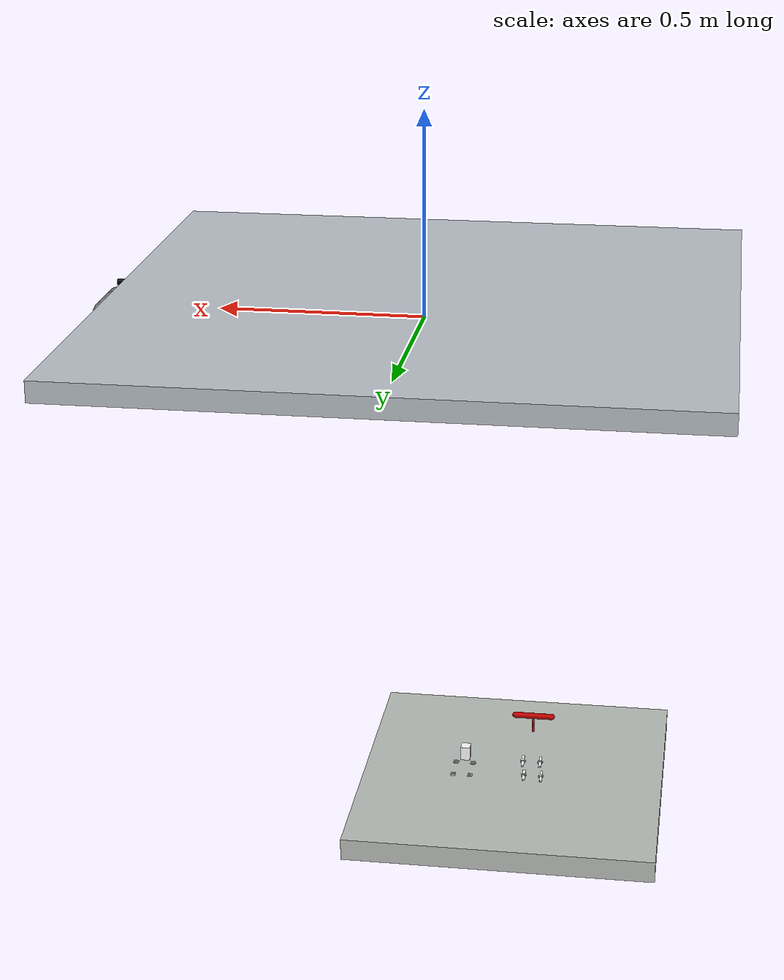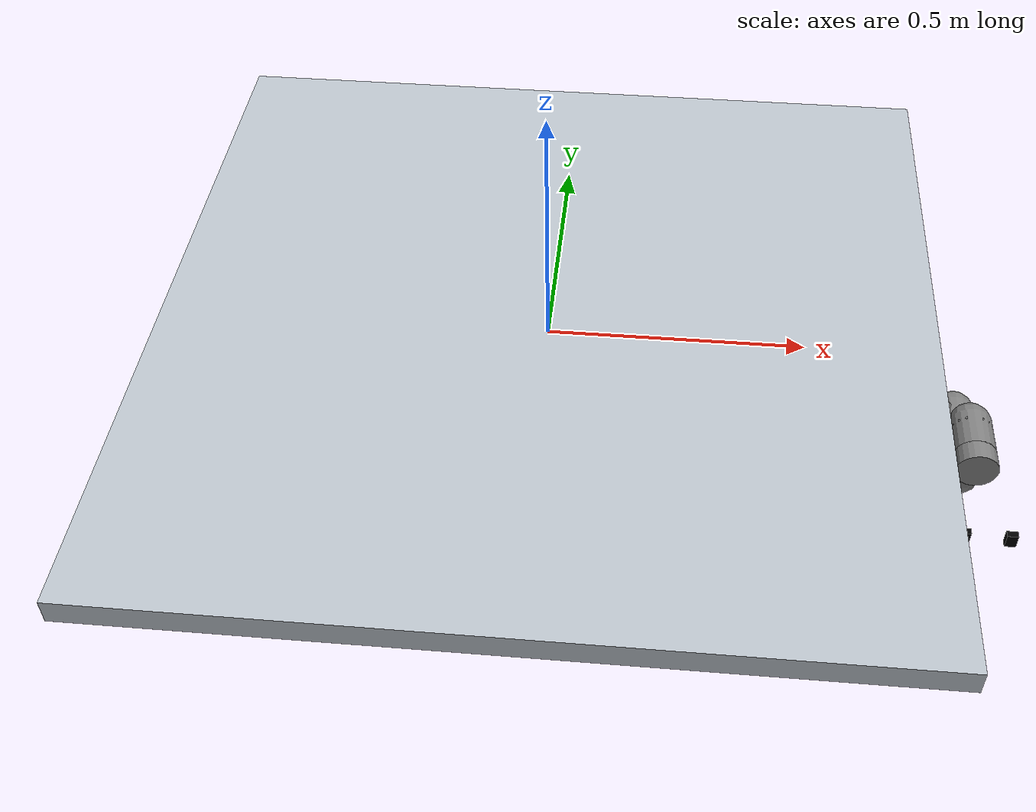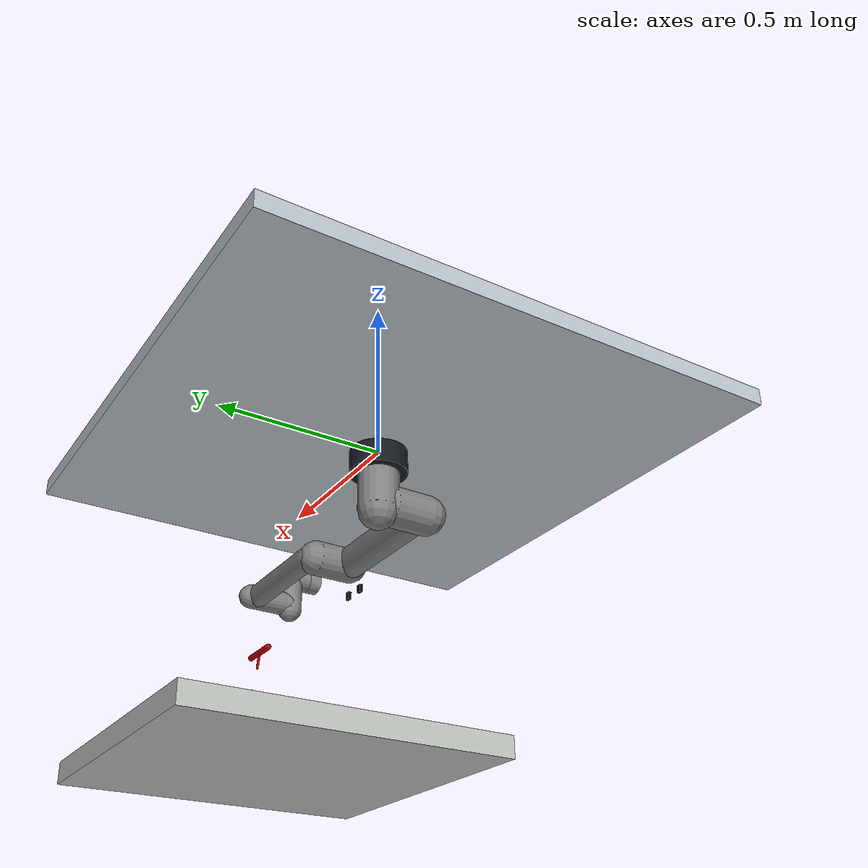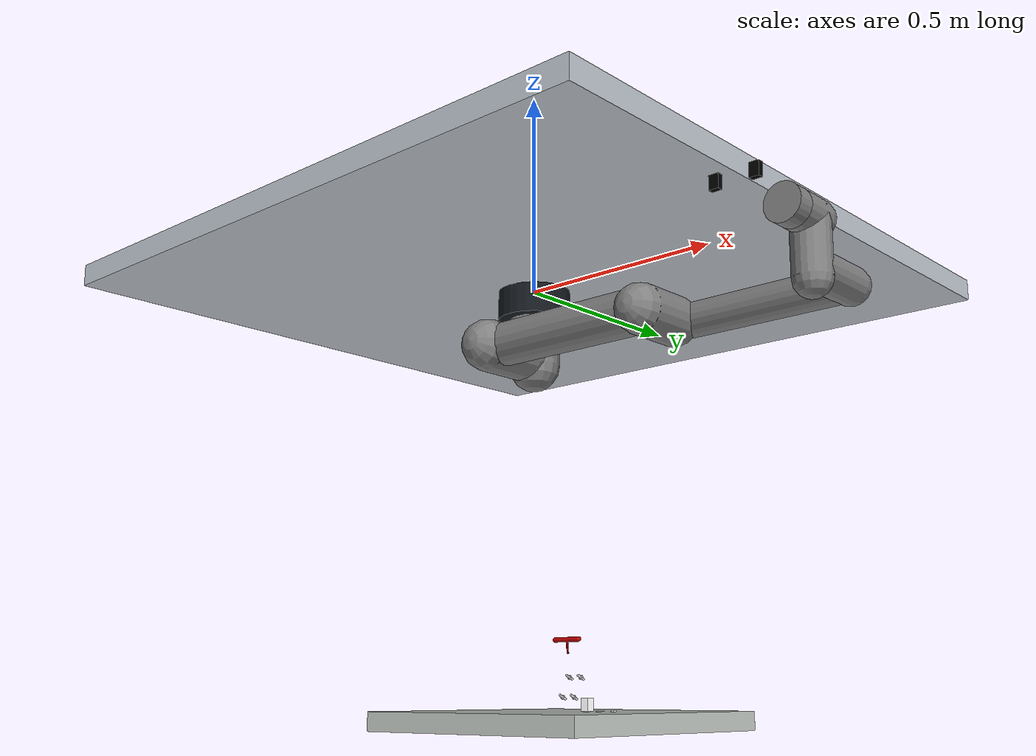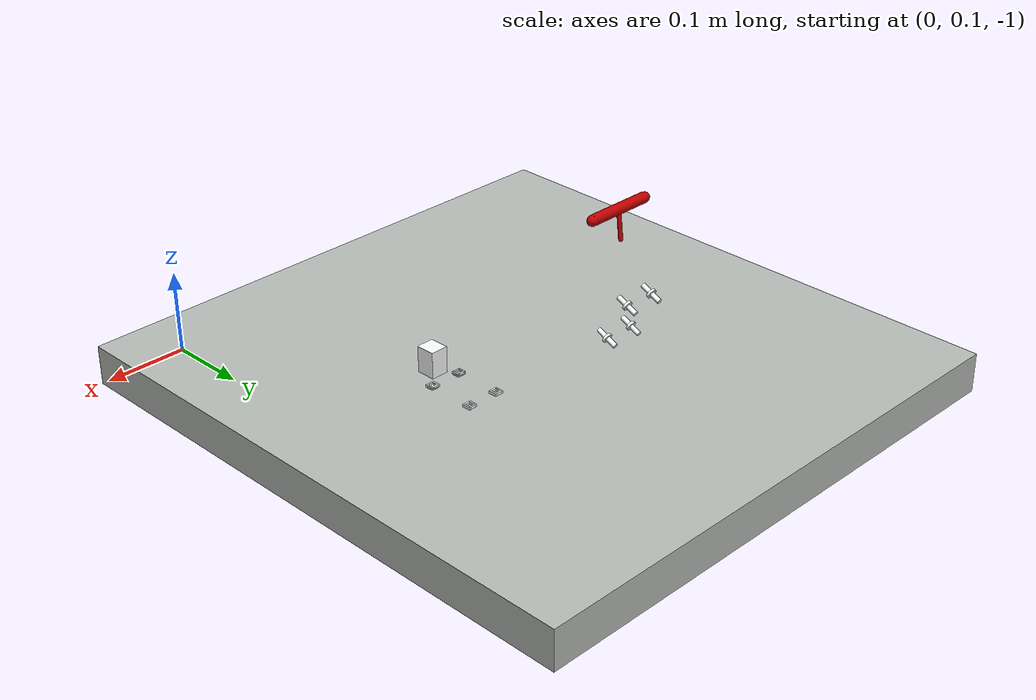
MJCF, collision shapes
<mujoco model="ceiling_ur5e_hande_table_control">
  <compiler angle="radian" autolimits="true" coordinate="local" />
  <option integrator="implicitfast" timestep="0.002" gravity="0 0 -9.81" impratio="20" />
  <visual>
    <headlight ambient="0.55 0.55 0.55" diffuse="0.45 0.45 0.45" specular="0.12 0.12 0.12" />
    <rgba haze="1 1 1 1" />
  </visual>
  <statistic center="-0.271848 0.414837 -0.492721" extent="1.8" />
  <default>
    <default class="ur5e">
      <material specular="0.5" shininess="0.25" />
      <joint axis="0 1 0" range="-6.28319 6.28319" armature="0.1" />
      <general gaintype="fixed" biastype="affine" ctrlrange="-6.2831 6.2831" gainprm="2000" biasprm="0 -2000 -400" forcerange="-150 150" />
      <default class="size3">
        <default class="size3_limited">
          <joint range="-3.1415 3.1415" />
          <general ctrlrange="-3.1415 3.1415" />
        </default>
      </default>
      <default class="size1">
        <general gainprm="500" biasprm="0 -500 -100" forcerange="-28 28" />
      </default>
      <default class="visual">
        <geom type="mesh" contype="0" conaffinity="0" group="2" />
      </default>
      <default class="collision">
        <geom type="capsule" group="3" />
        <default class="eef_collision">
          <geom type="cylinder" />
        </default>
      </default>
      <site size="0.001" rgba="0.5 0.5 0.5 0.3" group="4" />
    </default>
  </default>
  <asset>
    <material class="ur5e" name="black" rgba="0.033 0.033 0.033 1" />
    <material class="ur5e" name="jointgray" rgba="0.278 0.278 0.278 1" />
    <material class="ur5e" name="linkgray" rgba="0.82 0.82 0.82 1" />
    <material class="ur5e" name="urblue" rgba="0.49 0.678 0.8 1" />
    <mesh file="../assets/universal_robots_ur5e/assets/base_0.obj" />
    <mesh file="../assets/universal_robots_ur5e/assets/base_1.obj" />
    <mesh file="../assets/universal_robots_ur5e/assets/shoulder_0.obj" />
    <mesh file="../assets/universal_robots_ur5e/assets/shoulder_1.obj" />
    <mesh file="../assets/universal_robots_ur5e/assets/shoulder_2.obj" />
    <mesh file="../assets/universal_robots_ur5e/assets/upperarm_0.obj" />
    <mesh file="../assets/universal_robots_ur5e/assets/upperarm_1.obj" />
    <mesh file="../assets/universal_robots_ur5e/assets/upperarm_2.obj" />
    <mesh file="../assets/universal_robots_ur5e/assets/upperarm_3.obj" />
    <mesh file="../assets/universal_robots_ur5e/assets/forearm_0.obj" />
    <mesh file="../assets/universal_robots_ur5e/assets/forearm_1.obj" />
    <mesh file="../assets/universal_robots_ur5e/assets/forearm_2.obj" />
    <mesh file="../assets/universal_robots_ur5e/assets/forearm_3.obj" />
    <mesh file="../assets/universal_robots_ur5e/assets/wrist1_0.obj" />
    <mesh file="../assets/universal_robots_ur5e/assets/wrist1_1.obj" />
    <mesh file="../assets/universal_robots_ur5e/assets/wrist1_2.obj" />
    <mesh file="../assets/universal_robots_ur5e/assets/wrist2_0.obj" />
    <mesh file="../assets/universal_robots_ur5e/assets/wrist2_1.obj" />
    <mesh file="../assets/universal_robots_ur5e/assets/wrist2_2.obj" />
    <mesh file="../assets/universal_robots_ur5e/assets/wrist3.obj" />
    <texture name="white_skybox" type="skybox" builtin="flat" rgb1="1 1 1" rgb2="1 1 1" width="32" height="32" />
    <material name="ceiling_mat" rgba="0.720000 0.750000 0.780000 1.000000" />
    <material name="table_mat" rgba="0.720000 0.740000 0.720000 1.000000" />
    <material name="joint_mat" rgba="0.080000 0.100000 0.120000 1.000000" />
    <material name="hande_body_mat" rgba="0.090000 0.100000 0.110000 1.000000" />
    <material name="hande_finger_mat" rgba="0.180000 0.180000 0.170000 1.000000" />
    <material name="hande_metal_mat" rgba="0.580000 0.600000 0.620000 1.000000" />
    <material name="contact_mat" rgba="1.000000 0.660000 0.120000 1.000000" />
    <material name="tray_mat" rgba="0.960000 0.960000 0.930000 1.000000" />
    <material name="ti_assembly_grey_mat" rgba="0.460000 0.500000 0.460000 1.000000" />
    <material name="ti_assembly_pin_mat" rgba="0.960000 0.960000 0.930000 1.000000" />
    <material name="ti_assembly_plate_mat" rgba="0.080000 0.300000 0.820000 1.000000" />
    <material name="Black_Acrylic" rgba="0.070360 0.070360 0.070360 1.000000" />
    <material name="Cameras_Gray" rgba="0.296138 0.296138 0.296138 1.000000" />
    <material name="IR_Emitter_Lens" rgba="0.287440 0.665387 0.327778 1.000000" />
    <material name="IR_Lens" rgba="0.035601 0.035601 0.035601 1.000000" />
    <material name="IR_Rim" rgba="0.799102 0.806952 0.799103 1.000000" />
    <material name="Metal_Casing" rgba="1.000000 1.000000 1.000000 1.000000" />
    <material name="RGB_Pupil" rgba="0.087140 0.002866 0.009346 1.000000" />
    <mesh name="ti_assembly_pins" file="../assets/ti_assembly_no_presser_cathode_tray/mujoco_parts/ti_assembly_pins_mujoco.obj" inertia="shell" />
    <mesh name="ti_assembly_plate" file="../assets/ti_assembly_no_presser_cathode_tray/mujoco_parts/ti_assembly_plate_mujoco.obj" inertia="shell" />
    <mesh name="ti_assembly_grey" file="../assets/ti_assembly_no_presser_cathode_tray/mujoco_parts/ti_assembly_grey_mujoco.obj" inertia="shell" />
    <material name="ti_presser_red_mat" rgba="0.750000 0.000000 0.000000 1.000000" />
    <mesh name="ti_tray_part_00" file="../assets/ti_tray/mujoco_parts/ti_tray_part_00.obj" inertia="shell" />
    <mesh name="ti_tray_part_01" file="../assets/ti_tray/mujoco_parts/ti_tray_part_01.obj" inertia="shell" />
    <mesh name="ti_tray_part_02" file="../assets/ti_tray/mujoco_parts/ti_tray_part_02.obj" inertia="shell" />
    <mesh name="ti_tray_part_03" file="../assets/ti_tray/mujoco_parts/ti_tray_part_03.obj" inertia="shell" />
    <mesh name="ti_tray_part_04" file="../assets/ti_tray/mujoco_parts/ti_tray_part_04.obj" inertia="shell" />
    <mesh name="ti_tray_part_05" file="../assets/ti_tray/mujoco_parts/ti_tray_part_05.obj" inertia="shell" />
    <mesh name="ti_tray_part_06" file="../assets/ti_tray/mujoco_parts/ti_tray_part_06.obj" inertia="shell" />
    <mesh name="ti_tray_part_07" file="../assets/ti_tray/mujoco_parts/ti_tray_part_07.obj" inertia="shell" />
    <mesh name="ti_tray_part_08" file="../assets/ti_tray/mujoco_parts/ti_tray_part_08.obj" inertia="shell" />
    <mesh name="ti_tray_part_09" file="../assets/ti_tray/mujoco_parts/ti_tray_part_09.obj" inertia="shell" />
    <mesh name="ti_tray_part_10" file="../assets/ti_tray/mujoco_parts/ti_tray_part_10.obj" inertia="shell" />
    <mesh name="ti_tray_part_11" file="../assets/ti_tray/mujoco_parts/ti_tray_part_11.obj" inertia="shell" />
    <mesh name="ti_tray_part_12" file="../assets/ti_tray/mujoco_parts/ti_tray_part_12.obj" inertia="shell" />
    <mesh name="ti_tray_part_13" file="../assets/ti_tray/mujoco_parts/ti_tray_part_13.obj" inertia="shell" />
    <mesh name="ti_tray_part_14" file="../assets/ti_tray/mujoco_parts/ti_tray_part_14.obj" inertia="shell" />
    <mesh name="ti_tray_part_15" file="../assets/ti_tray/mujoco_parts/ti_tray_part_15.obj" inertia="shell" />
    <mesh name="ti_tray_part_16" file="../assets/ti_tray/mujoco_parts/ti_tray_part_16.obj" inertia="shell" />
    <mesh name="ti_tray_part_17" file="../assets/ti_tray/mujoco_parts/ti_tray_part_17.obj" inertia="shell" />
    <mesh name="ti_tray_part_18" file="../assets/ti_tray/mujoco_parts/ti_tray_part_18.obj" inertia="shell" />
    <mesh name="ti_tray_part_19" file="../assets/ti_tray/mujoco_parts/ti_tray_part_19.obj" inertia="shell" />
    <mesh name="ti_tray_part_20" file="../assets/ti_tray/mujoco_parts/ti_tray_part_20.obj" inertia="shell" />
    <mesh name="ti_tray_part_21" file="../assets/ti_tray/mujoco_parts/ti_tray_part_21.obj" inertia="shell" />
    <mesh name="ti_tray_part_22" file="../assets/ti_tray/mujoco_parts/ti_tray_part_22.obj" inertia="shell" />
    <mesh name="ti_tray_part_23" file="../assets/ti_tray/mujoco_parts/ti_tray_part_23.obj" inertia="shell" />
    <mesh name="ti_tray_part_24" file="../assets/ti_tray/mujoco_parts/ti_tray_part_24.obj" inertia="shell" />
    <mesh name="d435i_0" file="../assets/realsense_d435i/assets/d435i_0.obj" />
    <mesh name="d435i_1" file="../assets/realsense_d435i/assets/d435i_1.obj" />
    <mesh name="d435i_2" file="../assets/realsense_d435i/assets/d435i_2.obj" />
    <mesh name="d435i_3" file="../assets/realsense_d435i/assets/d435i_3.obj" />
    <mesh name="d435i_4" file="../assets/realsense_d435i/assets/d435i_4.obj" />
    <mesh name="d435i_5" file="../assets/realsense_d435i/assets/d435i_5.obj" />
    <mesh name="d435i_6" file="../assets/realsense_d435i/assets/d435i_6.obj" />
    <mesh name="d435i_7" file="../assets/realsense_d435i/assets/d435i_7.obj" />
    <mesh name="d435i_8" file="../assets/realsense_d435i/assets/d435i_8.obj" />
    <mesh name="hande_io_coupler" file="../assets/robotiq_hande_description/meshes/io_coupler.obj" />
    <mesh name="hande_body" file="../assets/robotiq_hande_description/meshes/hande.obj" />
    <mesh name="hande_finger" file="../assets/robotiq_hande_description/meshes/finger.obj" />
  </asset>
  <worldbody>
    <light name="spotlight" mode="targetbodycom" target="wrist_2_link" pos="0 -1 2" />
    <body name="ur5e_root" pos="0.000000 0.000000 0.000000" quat="0.000000 0.707107 0.707107 -0.000000">
      <body name="base" quat="1 0 0 1" childclass="ur5e">
        <inertial mass="4.0" pos="0 0 0" diaginertia="0.00443333156 0.00443333156 0.0072" />
        <geom mesh="base_0" material="black" class="visual" />
        <geom mesh="base_1" material="jointgray" class="visual" />
        <body name="shoulder_link" pos="0 0 0.163">
          <inertial mass="3.7" pos="0 0 0" diaginertia="0.0102675 0.0102675 0.00666" />
          <joint name="shoulder_pan_joint" class="size3" axis="0 0 1" />
          <geom mesh="shoulder_0" material="urblue" class="visual" />
          <geom mesh="shoulder_1" material="black" class="visual" />
          <geom mesh="shoulder_2" material="jointgray" class="visual" />
          <geom class="collision" size="0.06 0.06" pos="0 0 -0.04" />
          <body name="upper_arm_link" pos="0 0.138 0" quat="1 0 1 0">
            <inertial mass="8.393" pos="0 0 0.2125" diaginertia="0.133886 0.133886 0.0151074" />
            <joint name="shoulder_lift_joint" class="size3" />
            <geom mesh="upperarm_0" material="linkgray" class="visual" />
            <geom mesh="upperarm_1" material="black" class="visual" />
            <geom mesh="upperarm_2" material="jointgray" class="visual" />
            <geom mesh="upperarm_3" material="urblue" class="visual" />
            <geom class="collision" pos="0 -0.04 0" quat="1 1 0 0" size="0.06 0.06" />
            <geom class="collision" size="0.05 0.2" pos="0 0 0.2" />
            <body name="forearm_link" pos="0 -0.131 0.425">
              <inertial mass="2.275" pos="0 0 0.196" diaginertia="0.0311796 0.0311796 0.004095" />
              <joint name="elbow_joint" class="size3_limited" />
              <geom mesh="forearm_0" material="urblue" class="visual" />
              <geom mesh="forearm_1" material="linkgray" class="visual" />
              <geom mesh="forearm_2" material="black" class="visual" />
              <geom mesh="forearm_3" material="jointgray" class="visual" />
              <geom class="collision" pos="0 0.08 0" quat="1 1 0 0" size="0.055 0.06" />
              <geom class="collision" size="0.038 0.19" pos="0 0 0.2" />
              <body name="wrist_1_link" pos="0 0 0.392" quat="1 0 1 0">
                <inertial mass="1.219" pos="0 0.127 0" diaginertia="0.0025599 0.0025599 0.0021942" />
                <joint name="wrist_1_joint" class="size1" />
                <geom mesh="wrist1_0" material="black" class="visual" />
                <geom mesh="wrist1_1" material="urblue" class="visual" />
                <geom mesh="wrist1_2" material="jointgray" class="visual" />
                <geom class="collision" pos="0 0.05 0" quat="1 1 0 0" size="0.04 0.07" />
                <body name="wrist_2_link" pos="0 0.127 0">
                  <inertial mass="1.219" pos="0 0 0.1" diaginertia="0.0025599 0.0025599 0.0021942" />
                  <joint name="wrist_2_joint" axis="0 0 1" class="size1" />
                  <geom mesh="wrist2_0" material="black" class="visual" />
                  <geom mesh="wrist2_1" material="urblue" class="visual" />
                  <geom mesh="wrist2_2" material="jointgray" class="visual" />
                  <geom class="collision" size="0.04 0.06" pos="0 0 0.04" />
                  <geom class="collision" pos="0 0.02 0.1" quat="1 1 0 0" size="0.04 0.04" />
                  <body name="wrist_3_link" pos="0 0 0.1">
                    <inertial mass="0.1889" pos="0 0.0771683 0" quat="1 0 0 1" diaginertia="0.000132134 9.90863e-05 9.90863e-05" />
                    <joint name="wrist_3_joint" class="size1" />
                    <geom material="linkgray" mesh="wrist3" class="visual" />
                    <geom class="eef_collision" pos="0 0.08 0" quat="1 1 0 0" size="0.04 0.02" />
                    <site name="attachment_site" pos="0 0.1 0" quat="-1 1 0 0" />
                    <body name="hande_mount" pos="0 0.1 0" quat="-1 1 0 0">
                      <site name="grasp_center_site" pos="0 0 0.154" size="0.006" rgba="0.1 0.7 1 0.8" />
                      <geom name="hande_io_coupler" type="mesh" mesh="hande_io_coupler" pos="0.000000 0.000000 0.000000" quat="1.000000 0.000000 0.000000 0.000000" material="hande_metal_mat" contype="0" conaffinity="0" group="2" />
                      <geom name="hande_body" type="mesh" mesh="hande_body" pos="0.000000 0.000000 0.011000" quat="1.000000 0.000000 0.000000 0.000000" material="hande_body_mat" contype="0" conaffinity="0" group="2" />
                      <body name="hande_left_finger_body" pos="0.038000 0.000000 0.110000">
                        <joint name="hande_left_finger_joint" type="slide" axis="-1 0 0" range="0.000000 0.030000" damping="8" armature="0.002" />
                        <geom name="hande_left_finger_visual" type="mesh" mesh="hande_finger" pos="0 0 0" quat="1 0 0 0" material="hande_finger_mat" contype="0" conaffinity="0" group="2" />
                        <geom name="hande_left_pad_collision" type="box" pos="0.003000 0.000000 0.044000" size="0.0035 0.009 0.0035" rgba="0 0 0 0" mass="0.015" friction="5.0 0.10 0.01" condim="4" priority="2" contype="2" conaffinity="2" solref="0.004 1" solimp="0.95 0.99 0.001" group="3" />
                        <geom name="hande_left_handle_push_collision" type="box" pos="0.003000 0.000000 0.044000" size="0.010000 0.014000 0.006000" rgba="0 0 0 0" mass="0.006" friction="4.0 0.10 0.01" condim="4" priority="3" contype="0" conaffinity="64" solref="0.006 1" solimp="0.90 0.98 0.001" group="3" />
                      </body>
                      <body name="hande_right_finger_body" pos="-0.038000 0.000000 0.110000">
                        <joint name="hande_right_finger_joint" type="slide" axis="1 0 0" range="0.000000 0.030000" damping="8" armature="0.002" />
                        <geom name="hande_right_finger_visual" type="mesh" mesh="hande_finger" pos="0 0 0" quat="0 0 0 1" material="hande_finger_mat" contype="0" conaffinity="0" group="2" />
                        <geom name="hande_right_pad_collision" type="box" pos="-0.003000 0.000000 0.044000" size="0.0035 0.009 0.0035" rgba="0 0 0 0" mass="0.015" friction="5.0 0.10 0.01" condim="4" priority="2" contype="2" conaffinity="2" solref="0.004 1" solimp="0.95 0.99 0.001" group="3" />
                        <geom name="hande_right_handle_push_collision" type="box" pos="-0.003000 0.000000 0.044000" size="0.010000 0.014000 0.006000" rgba="0 0 0 0" mass="0.006" friction="4.0 0.10 0.01" condim="4" priority="3" contype="0" conaffinity="64" solref="0.006 1" solimp="0.90 0.98 0.001" group="3" />
                      </body>
                      <body name="realsense_wrist_mount" pos="0.000000 -0.055000 0.035000" quat="0.981627 -0.190809 0.000000 0.000000">
                        <inertial pos="0.000000 0.000000 -0.012500" mass="0.072000" diaginertia="0.000008 0.000050 0.000050" />
                        <geom name="realsense_d435i_0_00" type="mesh" mesh="d435i_0" contype="0" conaffinity="0" mass="0" group="2" material="IR_Lens" />
                        <geom name="realsense_d435i_1_01" type="mesh" mesh="d435i_1" contype="0" conaffinity="0" mass="0" group="2" material="IR_Emitter_Lens" />
                        <geom name="realsense_d435i_2_02" type="mesh" mesh="d435i_2" contype="0" conaffinity="0" mass="0" group="2" material="IR_Rim" />
                        <geom name="realsense_d435i_3_03" type="mesh" mesh="d435i_3" contype="0" conaffinity="0" mass="0" group="2" material="IR_Lens" />
                        <geom name="realsense_d435i_4_04" type="mesh" mesh="d435i_4" contype="0" conaffinity="0" mass="0" group="2" material="Cameras_Gray" />
                        <geom name="realsense_d435i_5_05" type="mesh" mesh="d435i_5" contype="0" conaffinity="0" mass="0" group="2" material="Black_Acrylic" />
                        <geom name="realsense_d435i_6_06" type="mesh" mesh="d435i_6" contype="0" conaffinity="0" mass="0" group="2" material="Black_Acrylic" />
                        <geom name="realsense_d435i_7_07" type="mesh" mesh="d435i_7" contype="0" conaffinity="0" mass="0" group="2" material="RGB_Pupil" />
                        <geom name="realsense_d435i_8_08" type="mesh" mesh="d435i_8" contype="0" conaffinity="0" mass="0" group="2" material="Metal_Casing" />
                        <camera name="realsense_rgb" pos="0.032000 0.000000 0.004000" xyaxes="1 0 0 0 -1 0" fovy="58" />
                        <site name="realsense_rgb_site" pos="0.032000 0.000000 0.004000" size="0.006" rgba="0.1 0.8 1 0.55" />
                      </body>
                    </body>
                  </body>
                </body>
              </body>
            </body>
          </body>
        </body>
      </body>
    </body>
    <light name="key" pos="0 -1 1.2" dir="0 1 -1" />
    <camera name="overview" pos="1.2 -1.5 0.6" xyaxes="0.78 0.62 0 -0.24 0.30 0.92" />
    <!--Plane centroid and normals are expressed in MuJoCo world coordinates. The table top uses the fitted centroid but is flattened to the robot-base plane.-->
    <!--centroid=-0.271848 0.414837 -0.985442 fitted_normal=0.001137 -0.028085 0.999605 table_normal=0.000000 0.000000 1.000000 rms_error_m=0.000198791-->
    <geom name="ceiling_panel" type="box" pos="0.000000 0.000000 0.025000" quat="1.000000 0.000000 0.000000 0.000000" size="0.750000 0.750000 0.025000" material="ceiling_mat" contype="0" conaffinity="0" />
    <geom name="ceiling_mount" type="cylinder" pos="0 0 -0.035" size="0.085 0.035" material="joint_mat" contype="0" conaffinity="0" />
    <geom name="estimated_table" type="box" pos="-0.271848 0.414837 -1.010442" quat="1.000000 0.000000 0.000000 0.000000" size="0.350000 0.368783 0.025000" material="table_mat" rgba="0.720000 0.740000 0.720000 1.000000" />
    <body name="ti_tray_body" pos="-0.152840 0.420550 -0.993968" quat="1.000000 0.000000 0.000000 0.000000">
      <inertial pos="-0.001287 -0.017132 0.017052" mass="0.005000000" diaginertia="0.000005 0.000002 0.000006" />
      <freejoint name="ti_tray_freejoint" />
      <site name="ti_tray_protrusion_site" pos="0.000000 -0.051500 0.027500" size="0.006" rgba="1 1 1 0.25" />
      <site name="ti_tray_hole_1_site" pos="-0.020000 -0.030000 0.010300" size="0.0015" rgba="1 1 1 0.25" />
      <site name="ti_tray_hole_2_site" pos="0.020000 -0.030000 0.010300" size="0.0015" rgba="1 1 1 0.25" />
      <site name="ti_tray_hole_3_site" pos="-0.020000 0.030000 0.010300" size="0.0015" rgba="1 1 1 0.25" />
      <site name="ti_tray_hole_4_site" pos="0.020000 0.030000 0.010300" size="0.0015" rgba="1 1 1 0.25" />
      <geom name="ti_tray_mesh_00" type="mesh" mesh="ti_tray_part_00" material="tray_mat" rgba="0.960000 0.960000 0.930000 1.000000" group="2" contype="0" conaffinity="0" density="0" />
      <geom name="ti_tray_mesh_01" type="mesh" mesh="ti_tray_part_01" material="tray_mat" rgba="0.960000 0.960000 0.930000 1.000000" group="2" contype="0" conaffinity="0" density="0" />
      <geom name="ti_tray_mesh_02" type="mesh" mesh="ti_tray_part_02" material="tray_mat" rgba="0.960000 0.960000 0.930000 1.000000" group="2" contype="0" conaffinity="0" density="0" />
      <geom name="ti_tray_mesh_03" type="mesh" mesh="ti_tray_part_03" material="tray_mat" rgba="0.960000 0.960000 0.930000 1.000000" group="2" contype="0" conaffinity="0" density="0" />
      <geom name="ti_tray_mesh_04" type="mesh" mesh="ti_tray_part_04" material="tray_mat" rgba="0.960000 0.960000 0.930000 1.000000" group="2" contype="0" conaffinity="0" density="0" />
      <geom name="ti_tray_mesh_05" type="mesh" mesh="ti_tray_part_05" material="tray_mat" rgba="0.960000 0.960000 0.930000 1.000000" group="2" contype="0" conaffinity="0" density="0" />
      <geom name="ti_tray_mesh_06" type="mesh" mesh="ti_tray_part_06" material="tray_mat" rgba="0.960000 0.960000 0.930000 1.000000" group="2" contype="0" conaffinity="0" density="0" />
      <geom name="ti_tray_mesh_07" type="mesh" mesh="ti_tray_part_07" material="tray_mat" rgba="0.960000 0.960000 0.930000 1.000000" group="2" contype="0" conaffinity="0" density="0" />
      <geom name="ti_tray_mesh_08" type="mesh" mesh="ti_tray_part_08" material="tray_mat" rgba="0.960000 0.960000 0.930000 1.000000" group="2" contype="0" conaffinity="0" density="0" />
      <geom name="ti_tray_mesh_09" type="mesh" mesh="ti_tray_part_09" material="tray_mat" rgba="0.960000 0.960000 0.930000 1.000000" group="2" contype="0" conaffinity="0" density="0" />
      <geom name="ti_tray_mesh_10" type="mesh" mesh="ti_tray_part_10" material="tray_mat" rgba="0.960000 0.960000 0.930000 1.000000" group="2" contype="0" conaffinity="0" density="0" />
      <geom name="ti_tray_mesh_11" type="mesh" mesh="ti_tray_part_11" material="tray_mat" rgba="0.960000 0.960000 0.930000 1.000000" group="2" contype="0" conaffinity="0" density="0" />
      <geom name="ti_tray_mesh_12" type="mesh" mesh="ti_tray_part_12" material="tray_mat" rgba="0.960000 0.960000 0.930000 1.000000" group="2" contype="0" conaffinity="0" density="0" />
      <geom name="ti_tray_mesh_13" type="mesh" mesh="ti_tray_part_13" material="tray_mat" rgba="0.960000 0.960000 0.930000 1.000000" group="2" contype="0" conaffinity="0" density="0" />
      <geom name="ti_tray_mesh_14" type="mesh" mesh="ti_tray_part_14" material="tray_mat" rgba="0.960000 0.960000 0.930000 1.000000" group="2" contype="0" conaffinity="0" density="0" />
      <geom name="ti_tray_mesh_15" type="mesh" mesh="ti_tray_part_15" material="tray_mat" rgba="0.960000 0.960000 0.930000 1.000000" group="2" contype="0" conaffinity="0" density="0" />
      <geom name="ti_tray_mesh_16" type="mesh" mesh="ti_tray_part_16" material="tray_mat" rgba="0.960000 0.960000 0.930000 1.000000" group="2" contype="0" conaffinity="0" density="0" />
      <geom name="ti_tray_mesh_17" type="mesh" mesh="ti_tray_part_17" material="tray_mat" rgba="0.960000 0.960000 0.930000 1.000000" group="2" contype="0" conaffinity="0" density="0" />
      <geom name="ti_tray_mesh_18" type="mesh" mesh="ti_tray_part_18" material="tray_mat" rgba="0.960000 0.960000 0.930000 1.000000" group="2" contype="0" conaffinity="0" density="0" />
      <geom name="ti_tray_mesh_19" type="mesh" mesh="ti_tray_part_19" material="tray_mat" rgba="0.960000 0.960000 0.930000 1.000000" group="2" contype="0" conaffinity="0" density="0" />
      <geom name="ti_tray_mesh_20" type="mesh" mesh="ti_tray_part_20" material="tray_mat" rgba="0.960000 0.960000 0.930000 1.000000" group="2" contype="0" conaffinity="0" density="0" />
      <geom name="ti_tray_mesh_21" type="mesh" mesh="ti_tray_part_21" material="tray_mat" rgba="0.960000 0.960000 0.930000 1.000000" group="2" contype="0" conaffinity="0" density="0" />
      <geom name="ti_tray_mesh_22" type="mesh" mesh="ti_tray_part_22" material="tray_mat" rgba="0.960000 0.960000 0.930000 1.000000" group="2" contype="0" conaffinity="0" density="0" />
      <geom name="ti_tray_mesh_23" type="mesh" mesh="ti_tray_part_23" material="tray_mat" rgba="0.960000 0.960000 0.930000 1.000000" group="2" contype="0" conaffinity="0" density="0" />
      <geom name="ti_tray_mesh_24" type="mesh" mesh="ti_tray_part_24" material="tray_mat" rgba="0.960000 0.960000 0.930000 1.000000" group="2" contype="0" conaffinity="0" density="0" />
      <geom name="ti_tray_protrusion_grasp_collision" type="box" pos="0.000000 -0.051500 0.027500" size="0.011000 0.012000 0.016500" rgba="1 1 1 0.12" friction="5.0 0.10 0.01" condim="4" priority="2" contype="2" conaffinity="2" solref="0.004 1" solimp="0.95 0.99 0.001" density="0" />
      <geom name="ti_tray_hole_1_left_collision" type="box" pos="-0.024450 -0.030000 0.010300" size="0.001000 0.005450 0.001600" rgba="1 1 1 0.06" friction="0.4 0.02 0.002" condim="3" priority="3" contype="8" conaffinity="4" solref="0.006 1" solimp="0.90 0.98 0.001" density="0" group="3" />
      <geom name="ti_tray_hole_1_right_collision" type="box" pos="-0.015550 -0.030000 0.010300" size="0.001000 0.005450 0.001600" rgba="1 1 1 0.06" friction="0.4 0.02 0.002" condim="3" priority="3" contype="8" conaffinity="4" solref="0.006 1" solimp="0.90 0.98 0.001" density="0" group="3" />
      <geom name="ti_tray_hole_1_bottom_collision" type="box" pos="-0.020000 -0.034450 0.010300" size="0.003450 0.001000 0.001600" rgba="1 1 1 0.06" friction="0.4 0.02 0.002" condim="3" priority="3" contype="8" conaffinity="4" solref="0.006 1" solimp="0.90 0.98 0.001" density="0" group="3" />
      <geom name="ti_tray_hole_1_top_collision" type="box" pos="-0.020000 -0.025550 0.010300" size="0.003450 0.001000 0.001600" rgba="1 1 1 0.06" friction="0.4 0.02 0.002" condim="3" priority="3" contype="8" conaffinity="4" solref="0.006 1" solimp="0.90 0.98 0.001" density="0" group="3" />
      <geom name="ti_tray_hole_1_stop_seat_collision" type="cylinder" pos="-0.020000 -0.030000 0.009650" size="0.006600 0.000500" rgba="1 1 1 0.05" friction="0.6 0.02 0.002" condim="3" priority="4" contype="32" conaffinity="16" solref="0.012 1" solimp="0.82 0.96 0.002" density="0" group="3" />
      <geom name="ti_tray_hole_2_left_collision" type="box" pos="0.015550 -0.030000 0.010300" size="0.001000 0.005450 0.001600" rgba="1 1 1 0.06" friction="0.4 0.02 0.002" condim="3" priority="3" contype="8" conaffinity="4" solref="0.006 1" solimp="0.90 0.98 0.001" density="0" group="3" />
      <geom name="ti_tray_hole_2_right_collision" type="box" pos="0.024450 -0.030000 0.010300" size="0.001000 0.005450 0.001600" rgba="1 1 1 0.06" friction="0.4 0.02 0.002" condim="3" priority="3" contype="8" conaffinity="4" solref="0.006 1" solimp="0.90 0.98 0.001" density="0" group="3" />
      <geom name="ti_tray_hole_2_bottom_collision" type="box" pos="0.020000 -0.034450 0.010300" size="0.003450 0.001000 0.001600" rgba="1 1 1 0.06" friction="0.4 0.02 0.002" condim="3" priority="3" contype="8" conaffinity="4" solref="0.006 1" solimp="0.90 0.98 0.001" density="0" group="3" />
      <geom name="ti_tray_hole_2_top_collision" type="box" pos="0.020000 -0.025550 0.010300" size="0.003450 0.001000 0.001600" rgba="1 1 1 0.06" friction="0.4 0.02 0.002" condim="3" priority="3" contype="8" conaffinity="4" solref="0.006 1" solimp="0.90 0.98 0.001" density="0" group="3" />
      <geom name="ti_tray_hole_2_stop_seat_collision" type="cylinder" pos="0.020000 -0.030000 0.009650" size="0.006600 0.000500" rgba="1 1 1 0.05" friction="0.6 0.02 0.002" condim="3" priority="4" contype="32" conaffinity="16" solref="0.012 1" solimp="0.82 0.96 0.002" density="0" group="3" />
      <geom name="ti_tray_hole_3_left_collision" type="box" pos="-0.024450 0.030000 0.010300" size="0.001000 0.005450 0.001600" rgba="1 1 1 0.06" friction="0.4 0.02 0.002" condim="3" priority="3" contype="8" conaffinity="4" solref="0.006 1" solimp="0.90 0.98 0.001" density="0" group="3" />
      <geom name="ti_tray_hole_3_right_collision" type="box" pos="-0.015550 0.030000 0.010300" size="0.001000 0.005450 0.001600" rgba="1 1 1 0.06" friction="0.4 0.02 0.002" condim="3" priority="3" contype="8" conaffinity="4" solref="0.006 1" solimp="0.90 0.98 0.001" density="0" group="3" />
      <geom name="ti_tray_hole_3_bottom_collision" type="box" pos="-0.020000 0.025550 0.010300" size="0.003450 0.001000 0.001600" rgba="1 1 1 0.06" friction="0.4 0.02 0.002" condim="3" priority="3" contype="8" conaffinity="4" solref="0.006 1" solimp="0.90 0.98 0.001" density="0" group="3" />
      <geom name="ti_tray_hole_3_top_collision" type="box" pos="-0.020000 0.034450 0.010300" size="0.003450 0.001000 0.001600" rgba="1 1 1 0.06" friction="0.4 0.02 0.002" condim="3" priority="3" contype="8" conaffinity="4" solref="0.006 1" solimp="0.90 0.98 0.001" density="0" group="3" />
      <geom name="ti_tray_hole_3_stop_seat_collision" type="cylinder" pos="-0.020000 0.030000 0.005650" size="0.006600 0.000500" rgba="1 1 1 0.05" friction="0.6 0.02 0.002" condim="3" priority="4" contype="32" conaffinity="16" solref="0.012 1" solimp="0.82 0.96 0.002" density="0" group="3" />
      <geom name="ti_tray_hole_4_left_collision" type="box" pos="0.015550 0.030000 0.010300" size="0.001000 0.005450 0.001600" rgba="1 1 1 0.06" friction="0.4 0.02 0.002" condim="3" priority="3" contype="8" conaffinity="4" solref="0.006 1" solimp="0.90 0.98 0.001" density="0" group="3" />
      <geom name="ti_tray_hole_4_right_collision" type="box" pos="0.024450 0.030000 0.010300" size="0.001000 0.005450 0.001600" rgba="1 1 1 0.06" friction="0.4 0.02 0.002" condim="3" priority="3" contype="8" conaffinity="4" solref="0.006 1" solimp="0.90 0.98 0.001" density="0" group="3" />
      <geom name="ti_tray_hole_4_bottom_collision" type="box" pos="0.020000 0.025550 0.010300" size="0.003450 0.001000 0.001600" rgba="1 1 1 0.06" friction="0.4 0.02 0.002" condim="3" priority="3" contype="8" conaffinity="4" solref="0.006 1" solimp="0.90 0.98 0.001" density="0" group="3" />
      <geom name="ti_tray_hole_4_top_collision" type="box" pos="0.020000 0.034450 0.010300" size="0.003450 0.001000 0.001600" rgba="1 1 1 0.06" friction="0.4 0.02 0.002" condim="3" priority="3" contype="8" conaffinity="4" solref="0.006 1" solimp="0.90 0.98 0.001" density="0" group="3" />
      <geom name="ti_tray_hole_4_stop_seat_collision" type="cylinder" pos="0.020000 0.030000 0.005650" size="0.006600 0.000500" rgba="1 1 1 0.05" friction="0.6 0.02 0.002" condim="3" priority="4" contype="32" conaffinity="16" solref="0.012 1" solimp="0.82 0.96 0.002" density="0" group="3" />
    </body>
    <geom name="ti_assembly_pins" type="mesh" mesh="ti_assembly_pins" pos="-0.351590 0.493097 -0.984442" quat="1.000000 0.000000 0.000000 0.000000" material="ti_assembly_pin_mat" rgba="0.960000 0.960000 0.930000 1.000000" contype="0" conaffinity="0" group="2" />
    <geom name="ti_assembly_plate" type="mesh" mesh="ti_assembly_plate" pos="-0.351590 0.493097 -0.984442" quat="1.000000 0.000000 0.000000 0.000000" material="ti_assembly_plate_mat" rgba="0.080000 0.300000 0.820000 1.000000" contype="0" conaffinity="0" group="2" />
    <geom name="ti_assembly_grey" type="mesh" mesh="ti_assembly_grey" pos="-0.351590 0.493097 -0.984442" quat="1.000000 0.000000 0.000000 0.000000" material="ti_assembly_grey_mat" rgba="0.460000 0.500000 0.460000 1.000000" contype="0" conaffinity="0" group="2" />
    <site name="ti_assembly_post_1_site" pos="-0.344090 0.500307 -0.951282" size="0.0015" rgba="1 1 1 0.35" />
    <geom name="ti_assembly_post_1_collision" type="cylinder" fromto="-0.344090 0.509371 -0.955508 -0.344090 0.483993 -0.943677" size="0.003000" rgba="1 1 1 0.08" friction="0.4 0.02 0.002" condim="3" priority="3" contype="4" conaffinity="8" solref="0.006 1" solimp="0.90 0.98 0.001" group="3" />
    <geom name="ti_assembly_post_1_stop_collision" type="cylinder" fromto="-0.344090 0.498041 -0.950226 -0.344090 0.495322 -0.948959" size="0.006000" rgba="1 1 1 0.08" friction="0.4 0.02 0.002" condim="3" priority="3" contype="16" conaffinity="32" solref="0.012 1" solimp="0.82 0.96 0.002" group="3" />
    <site name="ti_assembly_post_2_site" pos="-0.304090 0.500307 -0.951282" size="0.0015" rgba="1 1 1 0.35" />
    <geom name="ti_assembly_post_2_collision" type="cylinder" fromto="-0.304090 0.509371 -0.955508 -0.304090 0.483993 -0.943677" size="0.003000" rgba="1 1 1 0.08" friction="0.4 0.02 0.002" condim="3" priority="3" contype="4" conaffinity="8" solref="0.006 1" solimp="0.90 0.98 0.001" group="3" />
    <geom name="ti_assembly_post_2_stop_collision" type="cylinder" fromto="-0.304090 0.498041 -0.950226 -0.304090 0.495322 -0.948959" size="0.006000" rgba="1 1 1 0.08" friction="0.4 0.02 0.002" condim="3" priority="3" contype="16" conaffinity="32" solref="0.012 1" solimp="0.82 0.96 0.002" group="3" />
    <site name="ti_assembly_post_3_site" pos="-0.344090 0.525657 -0.896902" size="0.0015" rgba="1 1 1 0.35" />
    <geom name="ti_assembly_post_3_collision" type="cylinder" fromto="-0.344090 0.538346 -0.902818 -0.344090 0.512968 -0.890987" size="0.003000" rgba="1 1 1 0.08" friction="0.4 0.02 0.002" condim="3" priority="3" contype="4" conaffinity="8" solref="0.006 1" solimp="0.90 0.98 0.001" group="3" />
    <geom name="ti_assembly_post_3_stop_collision" type="cylinder" fromto="-0.344090 0.527017 -0.897536 -0.344090 0.524297 -0.896269" size="0.006000" rgba="1 1 1 0.08" friction="0.4 0.02 0.002" condim="3" priority="3" contype="16" conaffinity="32" solref="0.012 1" solimp="0.82 0.96 0.002" group="3" />
    <site name="ti_assembly_post_4_site" pos="-0.304090 0.525657 -0.896902" size="0.0015" rgba="1 1 1 0.35" />
    <geom name="ti_assembly_post_4_collision" type="cylinder" fromto="-0.304090 0.538346 -0.902818 -0.304090 0.512968 -0.890987" size="0.003000" rgba="1 1 1 0.08" friction="0.4 0.02 0.002" condim="3" priority="3" contype="4" conaffinity="8" solref="0.006 1" solimp="0.90 0.98 0.001" group="3" />
    <geom name="ti_assembly_post_4_stop_collision" type="cylinder" fromto="-0.304090 0.527017 -0.897536 -0.304090 0.524297 -0.896269" size="0.006000" rgba="1 1 1 0.08" friction="0.4 0.02 0.002" condim="3" priority="3" contype="16" conaffinity="32" solref="0.012 1" solimp="0.82 0.96 0.002" group="3" />
    <body name="ti_presser_body" pos="-0.296310 0.521840 -0.883422" quat="0.954765 0.297362 0.000000 0.000000">
      <body name="ti_presser_handle_body" pos="-0.027640 0.007584 0.056595">
        <joint name="ti_presser_handle_hinge_joint" type="hinge" axis="1 0 0" range="-1.200000 1.350000" limited="true" damping="0.04" armature="0.00008" frictionloss="0.02" />
        <inertial pos="-0.000000 0.000058 -0.003315" mass="0.020000000" diaginertia="0.000002 0.000005 0.000005" />
        <site name="ti_presser_handle_pivot_site" pos="0 0 0" size="0.0015" />
        <site name="ti_presser_handle_grip_site" pos="0.000000 0.017000 0.032000" size="0.002" rgba="1 0.2 0.05 0.45" />
        <geom name="ti_presser_handle_link_visual" type="capsule" fromto="0.000000 0.000000 0.000000 0.000000 0.017000 0.032000" size="0.002600" material="ti_presser_red_mat" rgba="0.750000 0.000000 0.000000 1.000000" contype="64" conaffinity="0" density="0" friction="1.0 0.02 0.002" condim="4" priority="4" solref="0.006 1" solimp="0.92 0.98 0.001" group="2" />
        <geom name="ti_presser_handle_grip_visual" type="capsule" fromto="-0.042000 0.017000 0.032000 0.042000 0.017000 0.032000" size="0.006500" material="ti_presser_red_mat" rgba="0.750000 0.000000 0.000000 1.000000" contype="64" conaffinity="0" density="0" friction="1.0 0.02 0.002" condim="4" priority="4" solref="0.006 1" solimp="0.92 0.98 0.001" group="2" />
      </body>
    </body>
  </worldbody>
  <actuator>
    <general class="size3" name="shoulder_pan" joint="shoulder_pan_joint" gainprm="10000" biasprm="0 -10000 -200" forcerange="-600 600" />
    <general class="size3" name="shoulder_lift" joint="shoulder_lift_joint" gainprm="10000" biasprm="0 -10000 -200" forcerange="-600 600" />
    <general class="size3_limited" name="elbow" joint="elbow_joint" gainprm="10000" biasprm="0 -10000 -200" forcerange="-600 600" />
    <general class="size1" name="wrist_1" joint="wrist_1_joint" gainprm="10000" biasprm="0 -10000 -200" forcerange="-600 600" />
    <general class="size1" name="wrist_2" joint="wrist_2_joint" gainprm="10000" biasprm="0 -10000 -200" forcerange="-600 600" />
    <general class="size1" name="wrist_3" joint="wrist_3_joint" gainprm="10000" biasprm="0 -10000 -200" forcerange="-600 600" />
    <general name="hande_left_finger" joint="hande_left_finger_joint" gaintype="fixed" biastype="affine" ctrlrange="0.000000 0.030000" gainprm="3000" biasprm="0 -3000 -80" forcerange="-300 300" />
    <general name="hande_right_finger" joint="hande_right_finger_joint" gaintype="fixed" biastype="affine" ctrlrange="0.000000 0.030000" gainprm="3000" biasprm="0 -3000 -80" forcerange="-300 300" />
  </actuator>
  <keyframe>
    <key name="contact_1" qpos="-2.253569 -0.470192 -1.303761 0.256214 1.549329 -0.657989 0.000000 0.000000 -0.152840 0.420550 -0.993968 1.000000 0.000000 0.000000 0.000000 0.000000" ctrl="-2.253569 -0.470192 -1.303761 0.256214 1.549329 -0.657989 0.000000 0.000000" />
    <key name="grasp_open" qpos="-2.253569 -0.470192 -1.303761 0.256214 1.549329 -0.657989 0.000000 0.000000 -0.152840 0.420550 -0.993968 1.000000 0.000000 0.000000 0.000000 0.000000" ctrl="-2.253569 -0.470192 -1.303761 0.256214 1.549329 -0.657989 0.000000 0.000000" />
    <key name="grasp_closed" qpos="-2.253569 -0.470192 -1.303761 0.256214 1.549329 -0.657989 0.000000 0.000000 -0.152840 0.420550 -0.993968 1.000000 0.000000 0.000000 0.000000 0.000000" ctrl="-2.253569 -0.470192 -1.303761 0.256214 1.549329 -0.657989 0.030000 0.030000" />
  </keyframe>
</mujoco>
